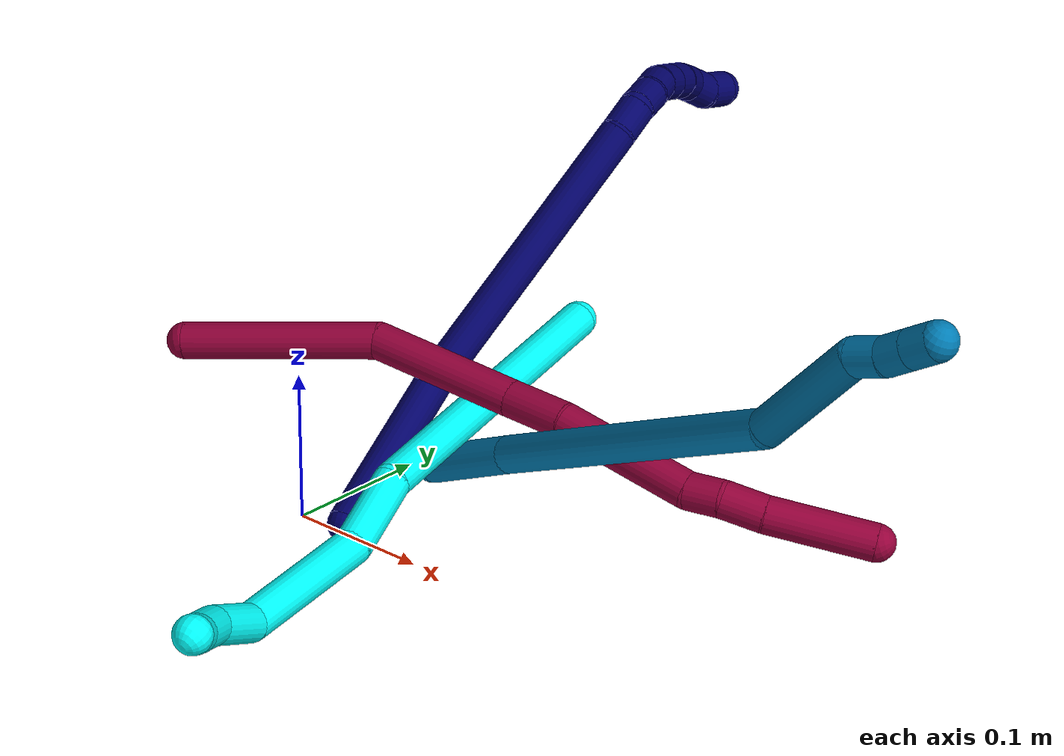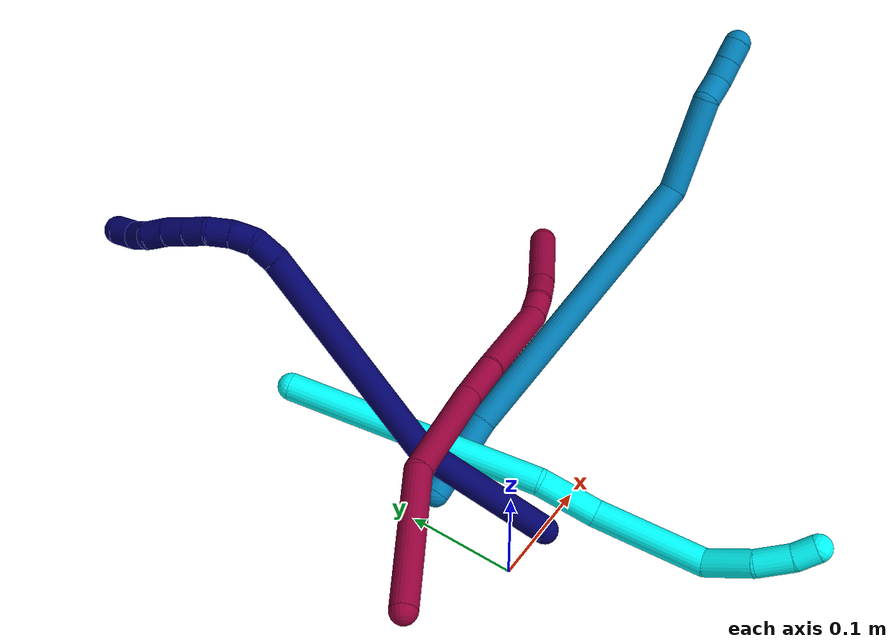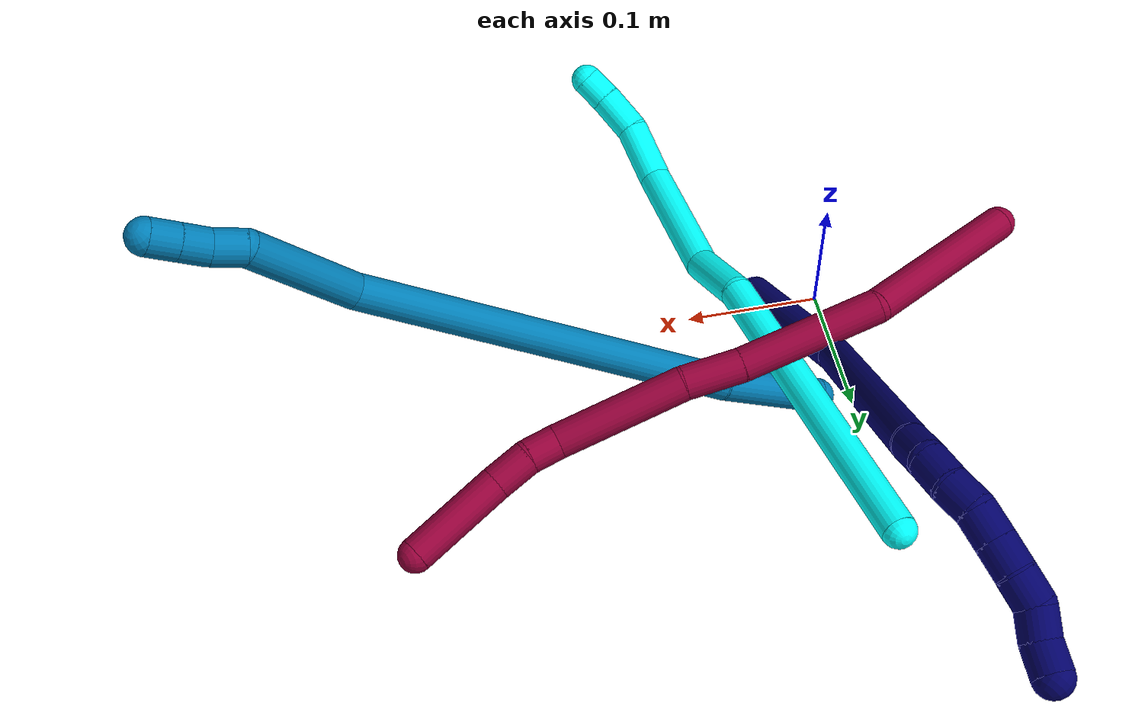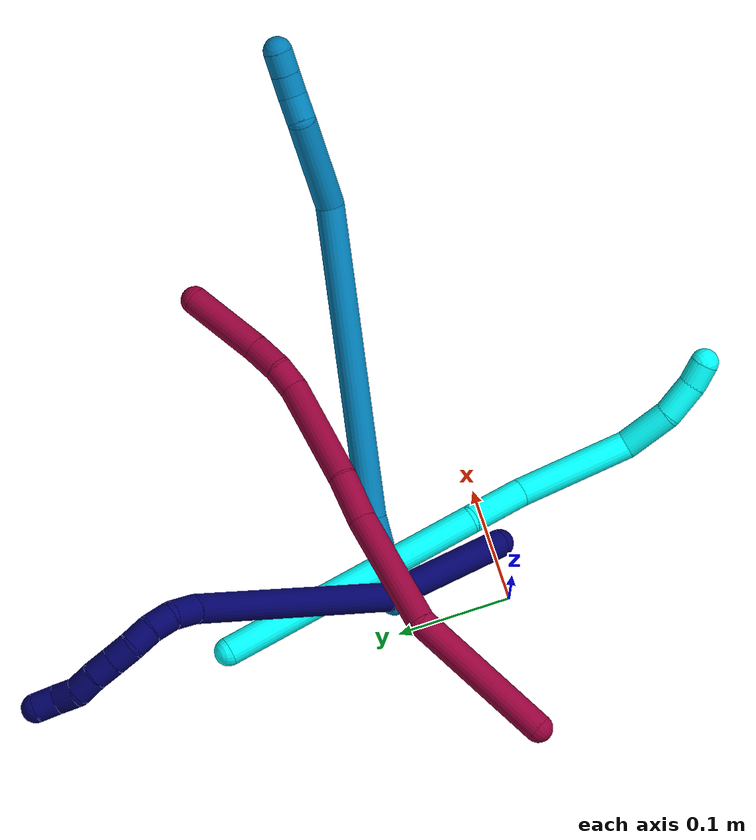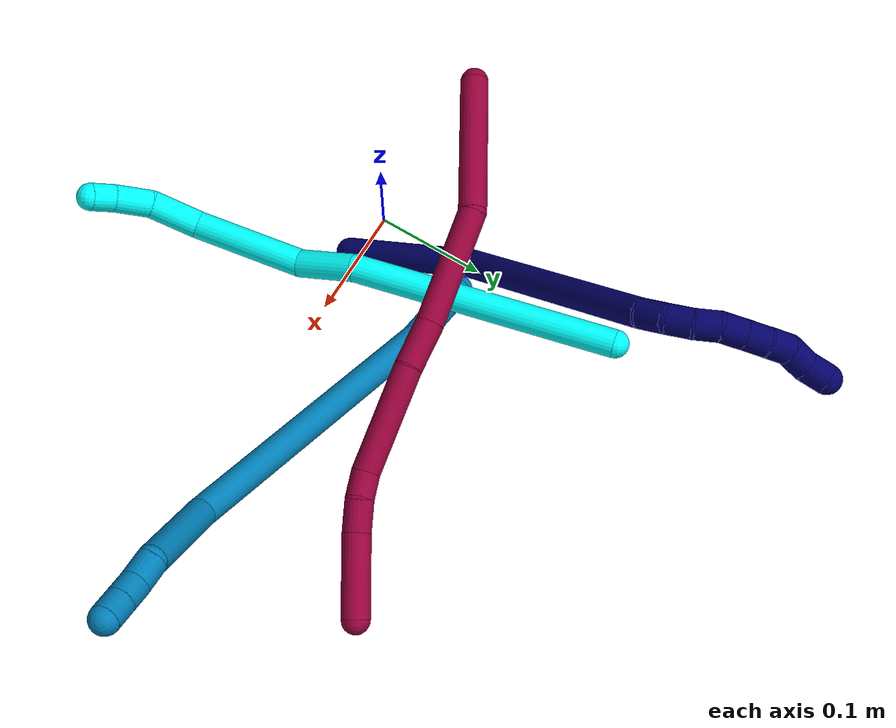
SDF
<sdf version="1.7">
 <world name="default">
  <model name="photoneo_s_sensor">
   <static>1</static>
   <pose>0 0 2 1.57079 1.57079 3.14159</pose>
   <link name="link">
    <inertial><mass>0.1</mass></inertial>
    <sensor name="sensor" type="depth">
     <update_rate>30</update_rate>
     <camera>
      <horizontal_fov>1.22</horizontal_fov>
      <image><width>1920</width><height>1200</height><format>B8G8R8</format></image>
      <clip><near>0.1</near><far>4</far></clip>
      <depth_camera><output>points</output></depth_camera>
     </camera>
     <plugin name="camera_plugin" filename="libgazebo_ros_depth_camera.so">
      <baseline>0.2</baseline>
      <alwaysOn>1</alwaysOn>
      <updateRate>0.0</updateRate>
      <cameraName>camera_ir</cameraName>
      <imageTopicName>/camera/color/image_raw</imageTopicName>
      <cameraInfoTopicName>/camera/color/camera_info</cameraInfoTopicName>
      <depthImageTopicName>/camera/depth/image_raw</depthImageTopicName>
      <depthImageCameraInfoTopicName>/camera/depth/camera_info</depthImageCameraInfoTopicName>
      <pointCloudTopicName>/camera/depth/points</pointCloudTopicName>
      <frameName>fr_optical</frameName>
      <pointCloudCutoff>0.1</pointCloudCutoff>
      <pointCloudCutoffMax>2.0</pointCloudCutoffMax>
      <distortionK1>0</distortionK1>
      <distortionK2>0</distortionK2>
      <distortionK3>0</distortionK3>
      <distortionT1>0</distortionT1>
      <distortionT2>0</distortionT2>
      <CxPrime>0</CxPrime>
      <Cx>0</Cx>
      <Cy>0</Cy>
      <focalLength>0</focalLength>
      <hackBaseline>0</hackBaseline>
     </plugin>
    </sensor>
   </link>
  </model>
  <model name="bin">
   <static>1</static>
   <link name="bottom">
    <collision name="collision-bottom">
     <pose>0 0 -0.01 0 -0 0</pose>
     <geometry><box><size>0.8 0.6 0.02</size></box></geometry>
     <surface>
      <friction><ode><mu>100</mu><mu2>100</mu2></ode></friction>
      <contact><collide_bitmask>65535</collide_bitmask></contact>
     </surface>
    </collision>
   </link>
   <link name="west_wall">
    <collision name="collision-west_wall">
     <pose>-0.41 0 0.1 0 -0 0</pose>
     <geometry><box><size>0.02 0.6 0.2</size></box></geometry>
     <surface>
      <friction><ode><mu>100</mu><mu2>100</mu2></ode></friction>
      <contact><collide_bitmask>65535</collide_bitmask></contact>
     </surface>
    </collision>
   </link>
   <link name="east_wall">
    <collision name="collision-east_wall">
     <pose>0.41 0 0.1 0 -0 0</pose>
     <geometry><box><size>0.02 0.6 0.2</size></box></geometry>
     <surface>
      <friction><ode><mu>100</mu><mu2>100</mu2></ode></friction>
      <contact><collide_bitmask>65535</collide_bitmask></contact>
     </surface>
    </collision>
   </link>
   <link name="south_wall">
    <collision name="collision-south_wall">
     <pose>0 -0.31 0.1 0 -0 0</pose>
     <geometry><box><size>0.8 0.02 0.2</size></box></geometry>
     <surface>
      <friction><ode><mu>100</mu><mu2>100</mu2></ode></friction>
      <contact><collide_bitmask>65535</collide_bitmask></contact>
     </surface>
    </collision>
   </link>
   <link name="north_wall">
    <collision name="collision-north_wall">
     <pose>0 0.31 0.1 0 -0 0</pose>
     <geometry><box><size>0.8 0.02 0.2</size></box></geometry>
     <surface>
      <friction><ode><mu>100</mu><mu2>100</mu2></ode></friction>
      <contact><collide_bitmask>65535</collide_bitmask></contact>
     </surface>
    </collision>
   </link>
  </model>
  <model name="3">
   <static>0</static>
   <link name="3">
    <collision name="collision-cylinder-e_1_1_4">
     <pose>-0.001042 -0.035317 -0.113741 2.84052 -0.008745 -0.057636</pose>
     <geometry><cylinder><radius>0.0125</radius><length>0.238205</length></cylinder></geometry>
     <surface>
      <friction><ode><mu>1.16</mu><mu2>1.16</mu2><slip1>0</slip1><slip2>0</slip2></ode></friction>
      <contact><ode><kp>1e+06</kp><kd>1</kd><max_vel>0</max_vel><min_depth>0.001</min_depth></ode></contact>
     </surface>
    </collision>
    <visual name="visual-cylinder-e_1_1_4">
     <pose>-0.001042 -0.035317 -0.113741 2.84052 -0.008745 -0.057636</pose>
     <geometry><cylinder><radius>0.0125</radius><length>0.238205</length></cylinder></geometry>
     <material><ambient>0.003922 1 0.996078 1</ambient></material>
    </visual>
    <collision name="collision-cylinder-e_2_4_5">
     <pose>0.001298 -0.070559 -0.25541 -3.13887 0.120471 -3.09639</pose>
     <geometry><cylinder><radius>0.0125</radius><length>0.056265</length></cylinder></geometry>
     <surface>
      <friction><ode><mu>1.16</mu><mu2>1.16</mu2><slip1>0</slip1><slip2>0</slip2></ode></friction>
      <contact><ode><kp>1e+06</kp><kd>1</kd><max_vel>0</max_vel><min_depth>0.001</min_depth></ode></contact>
     </surface>
    </collision>
    <visual name="visual-cylinder-e_2_4_5">
     <pose>0.001298 -0.070559 -0.25541 -3.13887 0.120471 -3.09639</pose>
     <geometry><cylinder><radius>0.0125</radius><length>0.056265</length></cylinder></geometry>
     <material><ambient>0.003922 1 0.996078 1</ambient></material>
    </visual>
    <collision name="collision-cylinder-e_3_5_6">
     <pose>0.000401 -0.085162 -0.332897 2.85361 -0.082584 -0.555178</pose>
     <geometry><cylinder><radius>0.0125</radius><length>0.103727</length></cylinder></geometry>
     <surface>
      <friction><ode><mu>1.16</mu><mu2>1.16</mu2><slip1>0</slip1><slip2>0</slip2></ode></friction>
      <contact><ode><kp>1e+06</kp><kd>1</kd><max_vel>0</max_vel><min_depth>0.001</min_depth></ode></contact>
     </surface>
    </collision>
    <visual name="visual-cylinder-e_3_5_6">
     <pose>0.000401 -0.085162 -0.332897 2.85361 -0.082584 -0.555178</pose>
     <geometry><cylinder><radius>0.0125</radius><length>0.103727</length></cylinder></geometry>
     <material><ambient>0.003922 1 0.996078 1</ambient></material>
    </visual>
    <collision name="collision-cylinder-e_4_6_7">
     <pose>-0.005643 -0.116365 -0.398438 2.33957 -0.076636 -0.180348</pose>
     <geometry><cylinder><radius>0.0125</radius><length>0.04611</length></cylinder></geometry>
     <surface>
      <friction><ode><mu>1.16</mu><mu2>1.16</mu2><slip1>0</slip1><slip2>0</slip2></ode></friction>
      <contact><ode><kp>1e+06</kp><kd>1</kd><max_vel>0</max_vel><min_depth>0.001</min_depth></ode></contact>
     </surface>
    </collision>
    <visual name="visual-cylinder-e_4_6_7">
     <pose>-0.005643 -0.116365 -0.398438 2.33957 -0.076636 -0.180348</pose>
     <geometry><cylinder><radius>0.0125</radius><length>0.04611</length></cylinder></geometry>
     <material><ambient>0.003922 1 0.996078 1</ambient></material>
    </visual>
    <collision name="collision-cylinder-e_5_7_8">
     <pose>-0.004231 -0.144817 -0.425816 2.33333 0.190245 0.438994</pose>
     <geometry><cylinder><radius>0.0125</radius><length>0.033602</length></cylinder></geometry>
     <surface>
      <friction><ode><mu>1.16</mu><mu2>1.16</mu2><slip1>0</slip1><slip2>0</slip2></ode></friction>
      <contact><ode><kp>1e+06</kp><kd>1</kd><max_vel>0</max_vel><min_depth>0.001</min_depth></ode></contact>
     </surface>
    </collision>
    <visual name="visual-cylinder-e_5_7_8">
     <pose>-0.004231 -0.144817 -0.425816 2.33333 0.190245 0.438994</pose>
     <geometry><cylinder><radius>0.0125</radius><length>0.033602</length></cylinder></geometry>
     <material><ambient>0.003922 1 0.996078 1</ambient></material>
    </visual>
    <collision name="collision-cylinder-e_6_8_2">
     <pose>0.002168 -0.165605 -0.44297 2.14717 0.296 0.536224</pose>
     <geometry><cylinder><radius>0.0125</radius><length>0.02209</length></cylinder></geometry>
     <surface>
      <friction><ode><mu>1.16</mu><mu2>1.16</mu2><slip1>0</slip1><slip2>0</slip2></ode></friction>
      <contact><ode><kp>1e+06</kp><kd>1</kd><max_vel>0</max_vel><min_depth>0.001</min_depth></ode></contact>
     </surface>
    </collision>
    <visual name="visual-cylinder-e_6_8_2">
     <pose>0.002168 -0.165605 -0.44297 2.14717 0.296 0.536224</pose>
     <geometry><cylinder><radius>0.0125</radius><length>0.02209</length></cylinder></geometry>
     <material><ambient>0.003922 1 0.996078 1</ambient></material>
    </visual>
    <collision name="collision-sphere-2">
     <pose>0.00539 -0.174463 -0.448727 0 -0 0</pose>
     <geometry><sphere><radius>0.0125</radius></sphere></geometry>
     <surface>
      <friction><ode><mu>1.16</mu><mu2>1.16</mu2><slip1>0</slip1><slip2>0</slip2></ode></friction>
      <contact><ode><kp>1e+06</kp><kd>1</kd><max_vel>0</max_vel><min_depth>0.001</min_depth></ode></contact>
     </surface>
    </collision>
    <visual name="visual-sphere-2">
     <pose>0.00539 -0.174463 -0.448727 0 -0 0</pose>
     <geometry><sphere><radius>0.0125</radius></sphere></geometry>
     <material><ambient>0.003922 1 0.996078 1</ambient></material>
    </visual>
    <collision name="collision-sphere-4">
     <pose>-0.002083 -0.070635 -0.227482 0 -0 0</pose>
     <geometry><sphere><radius>0.0125</radius></sphere></geometry>
     <surface>
      <friction><ode><mu>1.16</mu><mu2>1.16</mu2><slip1>0</slip1><slip2>0</slip2></ode></friction>
      <contact><ode><kp>1e+06</kp><kd>1</kd><max_vel>0</max_vel><min_depth>0.001</min_depth></ode></contact>
     </surface>
    </collision>
    <visual name="visual-sphere-4">
     <pose>-0.002083 -0.070635 -0.227482 0 -0 0</pose>
     <geometry><sphere><radius>0.0125</radius></sphere></geometry>
     <material><ambient>0.003922 1 0.996078 1</ambient></material>
    </visual>
    <collision name="collision-sphere-1">
     <geometry><sphere><radius>0.0125</radius></sphere></geometry>
     <surface>
      <friction><ode><mu>1.16</mu><mu2>1.16</mu2><slip1>0</slip1><slip2>0</slip2></ode></friction>
      <contact><ode><kp>1e+06</kp><kd>1</kd><max_vel>0</max_vel><min_depth>0.001</min_depth></ode></contact>
     </surface>
    </collision>
    <visual name="visual-sphere-1">
     <geometry><sphere><radius>0.0125</radius></sphere></geometry>
     <material><ambient>0.003922 1 0.996078 1</ambient></material>
    </visual>
    <collision name="collision-sphere-8">
     <pose>-0.001054 -0.156747 -0.437212 0 -0 0</pose>
     <geometry><sphere><radius>0.0125</radius></sphere></geometry>
     <surface>
      <friction><ode><mu>1.16</mu><mu2>1.16</mu2><slip1>0</slip1><slip2>0</slip2></ode></friction>
      <contact><ode><kp>1e+06</kp><kd>1</kd><max_vel>0</max_vel><min_depth>0.001</min_depth></ode></contact>
     </surface>
    </collision>
    <visual name="visual-sphere-8">
     <pose>-0.001054 -0.156747 -0.437212 0 -0 0</pose>
     <geometry><sphere><radius>0.0125</radius></sphere></geometry>
     <material><ambient>0.003922 1 0.996078 1</ambient></material>
    </visual>
    <collision name="collision-sphere-5">
     <pose>0.004679 -0.070483 -0.283339 0 -0 0</pose>
     <geometry><sphere><radius>0.0125</radius></sphere></geometry>
     <surface>
      <friction><ode><mu>1.16</mu><mu2>1.16</mu2><slip1>0</slip1><slip2>0</slip2></ode></friction>
      <contact><ode><kp>1e+06</kp><kd>1</kd><max_vel>0</max_vel><min_depth>0.001</min_depth></ode></contact>
     </surface>
    </collision>
    <visual name="visual-sphere-5">
     <pose>0.004679 -0.070483 -0.283339 0 -0 0</pose>
     <geometry><sphere><radius>0.0125</radius></sphere></geometry>
     <material><ambient>0.003922 1 0.996078 1</ambient></material>
    </visual>
    <collision name="collision-sphere-6">
     <pose>-0.003878 -0.099842 -0.382456 0 -0 0</pose>
     <geometry><sphere><radius>0.0125</radius></sphere></geometry>
     <surface>
      <friction><ode><mu>1.16</mu><mu2>1.16</mu2><slip1>0</slip1><slip2>0</slip2></ode></friction>
      <contact><ode><kp>1e+06</kp><kd>1</kd><max_vel>0</max_vel><min_depth>0.001</min_depth></ode></contact>
     </surface>
    </collision>
    <visual name="visual-sphere-6">
     <pose>-0.003878 -0.099842 -0.382456 0 -0 0</pose>
     <geometry><sphere><radius>0.0125</radius></sphere></geometry>
     <material><ambient>0.003922 1 0.996078 1</ambient></material>
    </visual>
    <collision name="collision-sphere-7">
     <pose>-0.007408 -0.132888 -0.41442 0 -0 0</pose>
     <geometry><sphere><radius>0.0125</radius></sphere></geometry>
     <surface>
      <friction><ode><mu>1.16</mu><mu2>1.16</mu2><slip1>0</slip1><slip2>0</slip2></ode></friction>
      <contact><ode><kp>1e+06</kp><kd>1</kd><max_vel>0</max_vel><min_depth>0.001</min_depth></ode></contact>
     </surface>
    </collision>
    <visual name="visual-sphere-7">
     <pose>-0.007408 -0.132888 -0.41442 0 -0 0</pose>
     <geometry><sphere><radius>0.0125</radius></sphere></geometry>
     <material><ambient>0.003922 1 0.996078 1</ambient></material>
    </visual>
    <inertial>
     <pose>-0.000976 -0.070213 -0.236921 0 -0 0</pose>
     <mass>0.5</mass>
     <inertia>
      <ixx>0.001098</ixx>
      <ixy>0</ixy>
      <ixz>0</ixz>
      <iyy>-0.001283</iyy>
      <iyz>0</iyz>
      <izz>0.000356</izz>
     </inertia>
    </inertial>
   </link>
   <pose>0.019487 0.246126 0.063926 -1.17681 0.23354 0.236943</pose>
  </model>
  <model name="7">
   <static>0</static>
   <link name="7">
    <collision name="collision-cylinder-e_1_1_4">
     <pose>0.035471 0.05025 0.014633 -1.28743 0.595624 -0.452719</pose>
     <geometry><cylinder><radius>0.0125</radius><length>0.12645</length></cylinder></geometry>
     <surface>
      <friction><ode><mu>1.16</mu><mu2>1.16</mu2><slip1>0</slip1><slip2>0</slip2></ode></friction>
      <contact><ode><kp>1e+06</kp><kd>1</kd><max_vel>0</max_vel><min_depth>0.001</min_depth></ode></contact>
     </surface>
    </collision>
    <visual name="visual-cylinder-e_1_1_4">
     <pose>0.035471 0.05025 0.014633 -1.28743 0.595624 -0.452719</pose>
     <geometry><cylinder><radius>0.0125</radius><length>0.12645</length></cylinder></geometry>
     <material><ambient>0.003922 0 0.403922 1</ambient></material>
    </visual>
    <collision name="collision-cylinder-e_2_4_5">
     <pose>0.097852 0.195041 0.063857 -1.22004 0.261207 -0.183102</pose>
     <geometry><cylinder><radius>0.0125</radius><length>0.208409</length></cylinder></geometry>
     <surface>
      <friction><ode><mu>1.16</mu><mu2>1.16</mu2><slip1>0</slip1><slip2>0</slip2></ode></friction>
      <contact><ode><kp>1e+06</kp><kd>1</kd><max_vel>0</max_vel><min_depth>0.001</min_depth></ode></contact>
     </surface>
    </collision>
    <visual name="visual-cylinder-e_2_4_5">
     <pose>0.097852 0.195041 0.063857 -1.22004 0.261207 -0.183102</pose>
     <geometry><cylinder><radius>0.0125</radius><length>0.208409</length></cylinder></geometry>
     <material><ambient>0.003922 0 0.403922 1</ambient></material>
    </visual>
    <collision name="collision-cylinder-e_3_5_6">
     <pose>0.130036 0.299315 0.102018 -1.21927 0.470513 -0.33172</pose>
     <geometry><cylinder><radius>0.0125</radius><length>0.023265</length></cylinder></geometry>
     <surface>
      <friction><ode><mu>1.16</mu><mu2>1.16</mu2><slip1>0</slip1><slip2>0</slip2></ode></friction>
      <contact><ode><kp>1e+06</kp><kd>1</kd><max_vel>0</max_vel><min_depth>0.001</min_depth></ode></contact>
     </surface>
    </collision>
    <visual name="visual-cylinder-e_3_5_6">
     <pose>0.130036 0.299315 0.102018 -1.21927 0.470513 -0.33172</pose>
     <geometry><cylinder><radius>0.0125</radius><length>0.023265</length></cylinder></geometry>
     <material><ambient>0.003922 0 0.403922 1</ambient></material>
    </visual>
    <collision name="collision-cylinder-e_4_6_7">
     <pose>0.143433 0.314935 0.108871 -1.06201 0.878268 -0.538318</pose>
     <geometry><cylinder><radius>0.0125</radius><length>0.02111</length></cylinder></geometry>
     <surface>
      <friction><ode><mu>1.16</mu><mu2>1.16</mu2><slip1>0</slip1><slip2>0</slip2></ode></friction>
      <contact><ode><kp>1e+06</kp><kd>1</kd><max_vel>0</max_vel><min_depth>0.001</min_depth></ode></contact>
     </surface>
    </collision>
    <visual name="visual-cylinder-e_4_6_7">
     <pose>0.143433 0.314935 0.108871 -1.06201 0.878268 -0.538318</pose>
     <geometry><cylinder><radius>0.0125</radius><length>0.02111</length></cylinder></geometry>
     <material><ambient>0.003922 0 0.403922 1</ambient></material>
    </visual>
    <collision name="collision-cylinder-e_5_7_8">
     <pose>0.160677 0.325042 0.114359 -1.08935 1.08962 -0.703668</pose>
     <geometry><cylinder><radius>0.0125</radius><length>0.020578</length></cylinder></geometry>
     <surface>
      <friction><ode><mu>1.16</mu><mu2>1.16</mu2><slip1>0</slip1><slip2>0</slip2></ode></friction>
      <contact><ode><kp>1e+06</kp><kd>1</kd><max_vel>0</max_vel><min_depth>0.001</min_depth></ode></contact>
     </surface>
    </collision>
    <visual name="visual-cylinder-e_5_7_8">
     <pose>0.160677 0.325042 0.114359 -1.08935 1.08962 -0.703668</pose>
     <geometry><cylinder><radius>0.0125</radius><length>0.020578</length></cylinder></geometry>
     <material><ambient>0.003922 0 0.403922 1</ambient></material>
    </visual>
    <collision name="collision-cylinder-e_6_8_9">
     <pose>0.178902 0.330879 0.120387 -0.400027 1.14307 -0.259296</pose>
     <geometry><cylinder><radius>0.0125</radius><length>0.02001</length></cylinder></geometry>
     <surface>
      <friction><ode><mu>1.16</mu><mu2>1.16</mu2><slip1>0</slip1><slip2>0</slip2></ode></friction>
      <contact><ode><kp>1e+06</kp><kd>1</kd><max_vel>0</max_vel><min_depth>0.001</min_depth></ode></contact>
     </surface>
    </collision>
    <visual name="visual-cylinder-e_6_8_9">
     <pose>0.178902 0.330879 0.120387 -0.400027 1.14307 -0.259296</pose>
     <geometry><cylinder><radius>0.0125</radius><length>0.02001</length></cylinder></geometry>
     <material><ambient>0.003922 0 0.403922 1</ambient></material>
    </visual>
    <collision name="collision-cylinder-e_7_9_10">
     <pose>0.197115 0.33413 0.128156 -0.392853 1.13228 -0.251599</pose>
     <geometry><cylinder><radius>0.0125</radius><length>0.020121</length></cylinder></geometry>
     <surface>
      <friction><ode><mu>1.16</mu><mu2>1.16</mu2><slip1>0</slip1><slip2>0</slip2></ode></friction>
      <contact><ode><kp>1e+06</kp><kd>1</kd><max_vel>0</max_vel><min_depth>0.001</min_depth></ode></contact>
     </surface>
    </collision>
    <visual name="visual-cylinder-e_7_9_10">
     <pose>0.197115 0.33413 0.128156 -0.392853 1.13228 -0.251599</pose>
     <geometry><cylinder><radius>0.0125</radius><length>0.020121</length></cylinder></geometry>
     <material><ambient>0.003922 0 0.403922 1</ambient></material>
    </visual>
    <collision name="collision-cylinder-e_8_10_11">
     <pose>0.21557 0.335872 0.135709 -0.029438 1.20233 -0.020191</pose>
     <geometry><cylinder><radius>0.0125</radius><length>0.020039</length></cylinder></geometry>
     <surface>
      <friction><ode><mu>1.16</mu><mu2>1.16</mu2><slip1>0</slip1><slip2>0</slip2></ode></friction>
      <contact><ode><kp>1e+06</kp><kd>1</kd><max_vel>0</max_vel><min_depth>0.001</min_depth></ode></contact>
     </surface>
    </collision>
    <visual name="visual-cylinder-e_8_10_11">
     <pose>0.21557 0.335872 0.135709 -0.029438 1.20233 -0.020191</pose>
     <geometry><cylinder><radius>0.0125</radius><length>0.020039</length></cylinder></geometry>
     <material><ambient>0.003922 0 0.403922 1</ambient></material>
    </visual>
    <collision name="collision-cylinder-e_9_11_12">
     <pose>0.232064 0.33526 0.14628 0.102713 0.795749 0.0432</pose>
     <geometry><cylinder><radius>0.0125</radius><length>0.020009</length></cylinder></geometry>
     <surface>
      <friction><ode><mu>1.16</mu><mu2>1.16</mu2><slip1>0</slip1><slip2>0</slip2></ode></friction>
      <contact><ode><kp>1e+06</kp><kd>1</kd><max_vel>0</max_vel><min_depth>0.001</min_depth></ode></contact>
     </surface>
    </collision>
    <visual name="visual-cylinder-e_9_11_12">
     <pose>0.232064 0.33526 0.14628 0.102713 0.795749 0.0432</pose>
     <geometry><cylinder><radius>0.0125</radius><length>0.020009</length></cylinder></geometry>
     <material><ambient>0.003922 0 0.403922 1</ambient></material>
    </visual>
    <collision name="collision-cylinder-e_10_12_2">
     <pose>0.246702 0.337097 0.159364 -0.395388 0.846131 -0.179895</pose>
     <geometry><cylinder><radius>0.0125</radius><length>0.020009</length></cylinder></geometry>
     <surface>
      <friction><ode><mu>1.16</mu><mu2>1.16</mu2><slip1>0</slip1><slip2>0</slip2></ode></friction>
      <contact><ode><kp>1e+06</kp><kd>1</kd><max_vel>0</max_vel><min_depth>0.001</min_depth></ode></contact>
     </surface>
    </collision>
    <visual name="visual-cylinder-e_10_12_2">
     <pose>0.246702 0.337097 0.159364 -0.395388 0.846131 -0.179895</pose>
     <geometry><cylinder><radius>0.0125</radius><length>0.020009</length></cylinder></geometry>
     <material><ambient>0.003922 0 0.403922 1</ambient></material>
    </visual>
    <collision name="collision-sphere-2">
     <pose>0.254192 0.339651 0.165484 0 -0 0</pose>
     <geometry><sphere><radius>0.0125</radius></sphere></geometry>
     <surface>
      <friction><ode><mu>1.16</mu><mu2>1.16</mu2><slip1>0</slip1><slip2>0</slip2></ode></friction>
      <contact><ode><kp>1e+06</kp><kd>1</kd><max_vel>0</max_vel><min_depth>0.001</min_depth></ode></contact>
     </surface>
    </collision>
    <visual name="visual-sphere-2">
     <pose>0.254192 0.339651 0.165484 0 -0 0</pose>
     <geometry><sphere><radius>0.0125</radius></sphere></geometry>
     <material><ambient>0.003922 0 0.403922 1</ambient></material>
    </visual>
    <collision name="collision-sphere-12">
     <pose>0.239211 0.334542 0.153244 0 -0 0</pose>
     <geometry><sphere><radius>0.0125</radius></sphere></geometry>
     <surface>
      <friction><ode><mu>1.16</mu><mu2>1.16</mu2><slip1>0</slip1><slip2>0</slip2></ode></friction>
      <contact><ode><kp>1e+06</kp><kd>1</kd><max_vel>0</max_vel><min_depth>0.001</min_depth></ode></contact>
     </surface>
    </collision>
    <visual name="visual-sphere-12">
     <pose>0.239211 0.334542 0.153244 0 -0 0</pose>
     <geometry><sphere><radius>0.0125</radius></sphere></geometry>
     <material><ambient>0.003922 0 0.403922 1</ambient></material>
    </visual>
    <collision name="collision-sphere-11">
     <pose>0.224917 0.335978 0.139316 0 -0 0</pose>
     <geometry><sphere><radius>0.0125</radius></sphere></geometry>
     <surface>
      <friction><ode><mu>1.16</mu><mu2>1.16</mu2><slip1>0</slip1><slip2>0</slip2></ode></friction>
      <contact><ode><kp>1e+06</kp><kd>1</kd><max_vel>0</max_vel><min_depth>0.001</min_depth></ode></contact>
     </surface>
    </collision>
    <visual name="visual-sphere-11">
     <pose>0.224917 0.335978 0.139316 0 -0 0</pose>
     <geometry><sphere><radius>0.0125</radius></sphere></geometry>
     <material><ambient>0.003922 0 0.403922 1</ambient></material>
    </visual>
    <collision name="collision-sphere-10">
     <pose>0.206223 0.335766 0.132102 0 -0 0</pose>
     <geometry><sphere><radius>0.0125</radius></sphere></geometry>
     <surface>
      <friction><ode><mu>1.16</mu><mu2>1.16</mu2><slip1>0</slip1><slip2>0</slip2></ode></friction>
      <contact><ode><kp>1e+06</kp><kd>1</kd><max_vel>0</max_vel><min_depth>0.001</min_depth></ode></contact>
     </surface>
    </collision>
    <visual name="visual-sphere-10">
     <pose>0.206223 0.335766 0.132102 0 -0 0</pose>
     <geometry><sphere><radius>0.0125</radius></sphere></geometry>
     <material><ambient>0.003922 0 0.403922 1</ambient></material>
    </visual>
    <collision name="collision-sphere-9">
     <pose>0.188006 0.332495 0.124209 0 -0 0</pose>
     <geometry><sphere><radius>0.0125</radius></sphere></geometry>
     <surface>
      <friction><ode><mu>1.16</mu><mu2>1.16</mu2><slip1>0</slip1><slip2>0</slip2></ode></friction>
      <contact><ode><kp>1e+06</kp><kd>1</kd><max_vel>0</max_vel><min_depth>0.001</min_depth></ode></contact>
     </surface>
    </collision>
    <visual name="visual-sphere-9">
     <pose>0.188006 0.332495 0.124209 0 -0 0</pose>
     <geometry><sphere><radius>0.0125</radius></sphere></geometry>
     <material><ambient>0.003922 0 0.403922 1</ambient></material>
    </visual>
    <collision name="collision-sphere-4">
     <pose>0.070942 0.100501 0.029267 0 -0 0</pose>
     <geometry><sphere><radius>0.0125</radius></sphere></geometry>
     <surface>
      <friction><ode><mu>1.16</mu><mu2>1.16</mu2><slip1>0</slip1><slip2>0</slip2></ode></friction>
      <contact><ode><kp>1e+06</kp><kd>1</kd><max_vel>0</max_vel><min_depth>0.001</min_depth></ode></contact>
     </surface>
    </collision>
    <visual name="visual-sphere-4">
     <pose>0.070942 0.100501 0.029267 0 -0 0</pose>
     <geometry><sphere><radius>0.0125</radius></sphere></geometry>
     <material><ambient>0.003922 0 0.403922 1</ambient></material>
    </visual>
    <collision name="collision-sphere-1">
     <geometry><sphere><radius>0.0125</radius></sphere></geometry>
     <surface>
      <friction><ode><mu>1.16</mu><mu2>1.16</mu2><slip1>0</slip1><slip2>0</slip2></ode></friction>
      <contact><ode><kp>1e+06</kp><kd>1</kd><max_vel>0</max_vel><min_depth>0.001</min_depth></ode></contact>
     </surface>
    </collision>
    <visual name="visual-sphere-1">
     <geometry><sphere><radius>0.0125</radius></sphere></geometry>
     <material><ambient>0.003922 0 0.403922 1</ambient></material>
    </visual>
    <collision name="collision-sphere-8">
     <pose>0.169798 0.329263 0.116564 0 -0 0</pose>
     <geometry><sphere><radius>0.0125</radius></sphere></geometry>
     <surface>
      <friction><ode><mu>1.16</mu><mu2>1.16</mu2><slip1>0</slip1><slip2>0</slip2></ode></friction>
      <contact><ode><kp>1e+06</kp><kd>1</kd><max_vel>0</max_vel><min_depth>0.001</min_depth></ode></contact>
     </surface>
    </collision>
    <visual name="visual-sphere-8">
     <pose>0.169798 0.329263 0.116564 0 -0 0</pose>
     <geometry><sphere><radius>0.0125</radius></sphere></geometry>
     <material><ambient>0.003922 0 0.403922 1</ambient></material>
    </visual>
    <collision name="collision-sphere-5">
     <pose>0.124763 0.289581 0.098448 0 -0 0</pose>
     <geometry><sphere><radius>0.0125</radius></sphere></geometry>
     <surface>
      <friction><ode><mu>1.16</mu><mu2>1.16</mu2><slip1>0</slip1><slip2>0</slip2></ode></friction>
      <contact><ode><kp>1e+06</kp><kd>1</kd><max_vel>0</max_vel><min_depth>0.001</min_depth></ode></contact>
     </surface>
    </collision>
    <visual name="visual-sphere-5">
     <pose>0.124763 0.289581 0.098448 0 -0 0</pose>
     <geometry><sphere><radius>0.0125</radius></sphere></geometry>
     <material><ambient>0.003922 0 0.403922 1</ambient></material>
    </visual>
    <collision name="collision-sphere-6">
     <pose>0.13531 0.30905 0.105589 0 -0 0</pose>
     <geometry><sphere><radius>0.0125</radius></sphere></geometry>
     <surface>
      <friction><ode><mu>1.16</mu><mu2>1.16</mu2><slip1>0</slip1><slip2>0</slip2></ode></friction>
      <contact><ode><kp>1e+06</kp><kd>1</kd><max_vel>0</max_vel><min_depth>0.001</min_depth></ode></contact>
     </surface>
    </collision>
    <visual name="visual-sphere-6">
     <pose>0.13531 0.30905 0.105589 0 -0 0</pose>
     <geometry><sphere><radius>0.0125</radius></sphere></geometry>
     <material><ambient>0.003922 0 0.403922 1</ambient></material>
    </visual>
    <collision name="collision-sphere-7">
     <pose>0.151557 0.320821 0.112154 0 -0 0</pose>
     <geometry><sphere><radius>0.0125</radius></sphere></geometry>
     <surface>
      <friction><ode><mu>1.16</mu><mu2>1.16</mu2><slip1>0</slip1><slip2>0</slip2></ode></friction>
      <contact><ode><kp>1e+06</kp><kd>1</kd><max_vel>0</max_vel><min_depth>0.001</min_depth></ode></contact>
     </surface>
    </collision>
    <visual name="visual-sphere-7">
     <pose>0.151557 0.320821 0.112154 0 -0 0</pose>
     <geometry><sphere><radius>0.0125</radius></sphere></geometry>
     <material><ambient>0.003922 0 0.403922 1</ambient></material>
    </visual>
    <inertial>
     <pose>0.111367 0.201661 0.072013 0 -0 0</pose>
     <mass>0.5</mass>
     <inertia>
      <ixx>0.000681</ixx>
      <ixy>0</ixy>
      <ixz>0</ixz>
      <iyy>0.000214</iyy>
      <iyz>0</iyz>
      <izz>-0.001124</izz>
     </inertia>
    </inertial>
   </link>
   <pose>0.046607 -0.006207 0.012485 1.88528 0.351799 2.34408</pose>
  </model>
  <model name="8">
   <static>0</static>
   <link name="8">
    <collision name="collision-cylinder-e_1_1_4">
     <pose>0.010254 0.009189 0.065226 -0.139963 0.154432 -0.010847</pose>
     <geometry><cylinder><radius>0.0125</radius><length>0.133327</length></cylinder></geometry>
     <surface>
      <friction><ode><mu>1.16</mu><mu2>1.16</mu2><slip1>0</slip1><slip2>0</slip2></ode></friction>
      <contact><ode><kp>1e+06</kp><kd>1</kd><max_vel>0</max_vel><min_depth>0.001</min_depth></ode></contact>
     </surface>
    </collision>
    <visual name="visual-cylinder-e_1_1_4">
     <pose>0.010254 0.009189 0.065226 -0.139963 0.154432 -0.010847</pose>
     <geometry><cylinder><radius>0.0125</radius><length>0.133327</length></cylinder></geometry>
     <material><ambient>0.584314 0 0.227451 1</ambient></material>
    </visual>
    <collision name="collision-cylinder-e_2_4_5">
     <pose>0.049015 0.021866 0.174264 -0.079442 0.575407 -0.023519</pose>
     <geometry><cylinder><radius>0.0125</radius><length>0.104772</length></cylinder></geometry>
     <surface>
      <friction><ode><mu>1.16</mu><mu2>1.16</mu2><slip1>0</slip1><slip2>0</slip2></ode></friction>
      <contact><ode><kp>1e+06</kp><kd>1</kd><max_vel>0</max_vel><min_depth>0.001</min_depth></ode></contact>
     </surface>
    </collision>
    <visual name="visual-cylinder-e_2_4_5">
     <pose>0.049015 0.021866 0.174264 -0.079442 0.575407 -0.023519</pose>
     <geometry><cylinder><radius>0.0125</radius><length>0.104772</length></cylinder></geometry>
     <material><ambient>0.584314 0 0.227451 1</ambient></material>
    </visual>
    <collision name="collision-cylinder-e_3_5_6">
     <pose>0.089213 0.024576 0.235717 0.0441 0.584762 0.013276</pose>
     <geometry><cylinder><radius>0.0125</radius><length>0.042356</length></cylinder></geometry>
     <surface>
      <friction><ode><mu>1.16</mu><mu2>1.16</mu2><slip1>0</slip1><slip2>0</slip2></ode></friction>
      <contact><ode><kp>1e+06</kp><kd>1</kd><max_vel>0</max_vel><min_depth>0.001</min_depth></ode></contact>
     </surface>
    </collision>
    <visual name="visual-cylinder-e_3_5_6">
     <pose>0.089213 0.024576 0.235717 0.0441 0.584762 0.013276</pose>
     <geometry><cylinder><radius>0.0125</radius><length>0.042356</length></cylinder></geometry>
     <material><ambient>0.584314 0 0.227451 1</ambient></material>
    </visual>
    <collision name="collision-cylinder-e_4_6_7">
     <pose>0.130402 0.02899 0.29087 -0.137567 0.661784 -0.047323</pose>
     <geometry><cylinder><radius>0.0125</radius><length>0.096005</length></cylinder></geometry>
     <surface>
      <friction><ode><mu>1.16</mu><mu2>1.16</mu2><slip1>0</slip1><slip2>0</slip2></ode></friction>
      <contact><ode><kp>1e+06</kp><kd>1</kd><max_vel>0</max_vel><min_depth>0.001</min_depth></ode></contact>
     </surface>
    </collision>
    <visual name="visual-cylinder-e_4_6_7">
     <pose>0.130402 0.02899 0.29087 -0.137567 0.661784 -0.047323</pose>
     <geometry><cylinder><radius>0.0125</radius><length>0.096005</length></cylinder></geometry>
     <material><ambient>0.584314 0 0.227451 1</ambient></material>
    </visual>
    <collision name="collision-cylinder-e_5_7_8">
     <pose>0.164331 0.035378 0.33903 -0.111719 0.392058 -0.022207</pose>
     <geometry><cylinder><radius>0.0125</radius><length>0.023188</length></cylinder></geometry>
     <surface>
      <friction><ode><mu>1.16</mu><mu2>1.16</mu2><slip1>0</slip1><slip2>0</slip2></ode></friction>
      <contact><ode><kp>1e+06</kp><kd>1</kd><max_vel>0</max_vel><min_depth>0.001</min_depth></ode></contact>
     </surface>
    </collision>
    <visual name="visual-cylinder-e_5_7_8">
     <pose>0.164331 0.035378 0.33903 -0.111719 0.392058 -0.022207</pose>
     <geometry><cylinder><radius>0.0125</radius><length>0.023188</length></cylinder></geometry>
     <material><ambient>0.584314 0 0.227451 1</ambient></material>
    </visual>
    <collision name="collision-cylinder-e_6_8_9">
     <pose>0.17469 0.041135 0.361786 -0.360358 0.429636 -0.079445</pose>
     <geometry><cylinder><radius>0.0125</radius><length>0.028468</length></cylinder></geometry>
     <surface>
      <friction><ode><mu>1.16</mu><mu2>1.16</mu2><slip1>0</slip1><slip2>0</slip2></ode></friction>
      <contact><ode><kp>1e+06</kp><kd>1</kd><max_vel>0</max_vel><min_depth>0.001</min_depth></ode></contact>
     </surface>
    </collision>
    <visual name="visual-cylinder-e_6_8_9">
     <pose>0.17469 0.041135 0.361786 -0.360358 0.429636 -0.079445</pose>
     <geometry><cylinder><radius>0.0125</radius><length>0.028468</length></cylinder></geometry>
     <material><ambient>0.584314 0 0.227451 1</ambient></material>
    </visual>
    <collision name="collision-cylinder-e_7_9_2">
     <pose>0.192133 0.057807 0.405717 -0.363604 0.326096 -0.060465</pose>
     <geometry><cylinder><radius>0.0125</radius><length>0.071884</length></cylinder></geometry>
     <surface>
      <friction><ode><mu>1.16</mu><mu2>1.16</mu2><slip1>0</slip1><slip2>0</slip2></ode></friction>
      <contact><ode><kp>1e+06</kp><kd>1</kd><max_vel>0</max_vel><min_depth>0.001</min_depth></ode></contact>
     </surface>
    </collision>
    <visual name="visual-cylinder-e_7_9_2">
     <pose>0.192133 0.057807 0.405717 -0.363604 0.326096 -0.060465</pose>
     <geometry><cylinder><radius>0.0125</radius><length>0.071884</length></cylinder></geometry>
     <material><ambient>0.584314 0 0.227451 1</ambient></material>
    </visual>
    <collision name="collision-sphere-2">
     <pose>0.203647 0.069916 0.437539 0 -0 0</pose>
     <geometry><sphere><radius>0.0125</radius></sphere></geometry>
     <surface>
      <friction><ode><mu>1.16</mu><mu2>1.16</mu2><slip1>0</slip1><slip2>0</slip2></ode></friction>
      <contact><ode><kp>1e+06</kp><kd>1</kd><max_vel>0</max_vel><min_depth>0.001</min_depth></ode></contact>
     </surface>
    </collision>
    <visual name="visual-sphere-2">
     <pose>0.203647 0.069916 0.437539 0 -0 0</pose>
     <geometry><sphere><radius>0.0125</radius></sphere></geometry>
     <material><ambient>0.584314 0 0.227451 1</ambient></material>
    </visual>
    <collision name="collision-sphere-9">
     <pose>0.180619 0.045698 0.373895 0 -0 0</pose>
     <geometry><sphere><radius>0.0125</radius></sphere></geometry>
     <surface>
      <friction><ode><mu>1.16</mu><mu2>1.16</mu2><slip1>0</slip1><slip2>0</slip2></ode></friction>
      <contact><ode><kp>1e+06</kp><kd>1</kd><max_vel>0</max_vel><min_depth>0.001</min_depth></ode></contact>
     </surface>
    </collision>
    <visual name="visual-sphere-9">
     <pose>0.180619 0.045698 0.373895 0 -0 0</pose>
     <geometry><sphere><radius>0.0125</radius></sphere></geometry>
     <material><ambient>0.584314 0 0.227451 1</ambient></material>
    </visual>
    <collision name="collision-sphere-4">
     <pose>0.020508 0.018379 0.130452 0 -0 0</pose>
     <geometry><sphere><radius>0.0125</radius></sphere></geometry>
     <surface>
      <friction><ode><mu>1.16</mu><mu2>1.16</mu2><slip1>0</slip1><slip2>0</slip2></ode></friction>
      <contact><ode><kp>1e+06</kp><kd>1</kd><max_vel>0</max_vel><min_depth>0.001</min_depth></ode></contact>
     </surface>
    </collision>
    <visual name="visual-sphere-4">
     <pose>0.020508 0.018379 0.130452 0 -0 0</pose>
     <geometry><sphere><radius>0.0125</radius></sphere></geometry>
     <material><ambient>0.584314 0 0.227451 1</ambient></material>
    </visual>
    <collision name="collision-sphere-1">
     <geometry><sphere><radius>0.0125</radius></sphere></geometry>
     <surface>
      <friction><ode><mu>1.16</mu><mu2>1.16</mu2><slip1>0</slip1><slip2>0</slip2></ode></friction>
      <contact><ode><kp>1e+06</kp><kd>1</kd><max_vel>0</max_vel><min_depth>0.001</min_depth></ode></contact>
     </surface>
    </collision>
    <visual name="visual-sphere-1">
     <geometry><sphere><radius>0.0125</radius></sphere></geometry>
     <material><ambient>0.584314 0 0.227451 1</ambient></material>
    </visual>
    <collision name="collision-sphere-8">
     <pose>0.168761 0.036573 0.349677 0 -0 0</pose>
     <geometry><sphere><radius>0.0125</radius></sphere></geometry>
     <surface>
      <friction><ode><mu>1.16</mu><mu2>1.16</mu2><slip1>0</slip1><slip2>0</slip2></ode></friction>
      <contact><ode><kp>1e+06</kp><kd>1</kd><max_vel>0</max_vel><min_depth>0.001</min_depth></ode></contact>
     </surface>
    </collision>
    <visual name="visual-sphere-8">
     <pose>0.168761 0.036573 0.349677 0 -0 0</pose>
     <geometry><sphere><radius>0.0125</radius></sphere></geometry>
     <material><ambient>0.584314 0 0.227451 1</ambient></material>
    </visual>
    <collision name="collision-sphere-5">
     <pose>0.077522 0.025354 0.218075 0 -0 0</pose>
     <geometry><sphere><radius>0.0125</radius></sphere></geometry>
     <surface>
      <friction><ode><mu>1.16</mu><mu2>1.16</mu2><slip1>0</slip1><slip2>0</slip2></ode></friction>
      <contact><ode><kp>1e+06</kp><kd>1</kd><max_vel>0</max_vel><min_depth>0.001</min_depth></ode></contact>
     </surface>
    </collision>
    <visual name="visual-sphere-5">
     <pose>0.077522 0.025354 0.218075 0 -0 0</pose>
     <geometry><sphere><radius>0.0125</radius></sphere></geometry>
     <material><ambient>0.584314 0 0.227451 1</ambient></material>
    </visual>
    <collision name="collision-sphere-6">
     <pose>0.100903 0.023797 0.253359 0 -0 0</pose>
     <geometry><sphere><radius>0.0125</radius></sphere></geometry>
     <surface>
      <friction><ode><mu>1.16</mu><mu2>1.16</mu2><slip1>0</slip1><slip2>0</slip2></ode></friction>
      <contact><ode><kp>1e+06</kp><kd>1</kd><max_vel>0</max_vel><min_depth>0.001</min_depth></ode></contact>
     </surface>
    </collision>
    <visual name="visual-sphere-6">
     <pose>0.100903 0.023797 0.253359 0 -0 0</pose>
     <geometry><sphere><radius>0.0125</radius></sphere></geometry>
     <material><ambient>0.584314 0 0.227451 1</ambient></material>
    </visual>
    <collision name="collision-sphere-7">
     <pose>0.159901 0.034183 0.328382 0 -0 0</pose>
     <geometry><sphere><radius>0.0125</radius></sphere></geometry>
     <surface>
      <friction><ode><mu>1.16</mu><mu2>1.16</mu2><slip1>0</slip1><slip2>0</slip2></ode></friction>
      <contact><ode><kp>1e+06</kp><kd>1</kd><max_vel>0</max_vel><min_depth>0.001</min_depth></ode></contact>
     </surface>
    </collision>
    <visual name="visual-sphere-7">
     <pose>0.159901 0.034183 0.328382 0 -0 0</pose>
     <geometry><sphere><radius>0.0125</radius></sphere></geometry>
     <material><ambient>0.584314 0 0.227451 1</ambient></material>
    </visual>
    <inertial>
     <pose>0.090791 0.026974 0.224377 0 -0 0</pose>
     <mass>0.5</mass>
     <inertia>
      <ixx>0.000395</ixx>
      <ixy>0</ixy>
      <ixz>0</ixz>
      <iyy>0.000418</iyy>
      <iyz>0</iyz>
      <izz>-0.000171</izz>
     </inertia>
    </inertial>
   </link>
   <pose>-0.127001 0.018669 0.079654 -1.15939 0.724619 -0.750229</pose>
  </model>
  <model name="9">
   <static>0</static>
   <link name="9">
    <collision name="collision-cylinder-e_1_1_4">
     <pose>0.003507 -0.027099 0.027048 0.786343 0.091345 0.037909</pose>
     <geometry><cylinder><radius>0.0125</radius><length>0.076895</length></cylinder></geometry>
     <surface>
      <friction><ode><mu>1.16</mu><mu2>1.16</mu2><slip1>0</slip1><slip2>0</slip2></ode></friction>
      <contact><ode><kp>1e+06</kp><kd>1</kd><max_vel>0</max_vel><min_depth>0.001</min_depth></ode></contact>
     </surface>
    </collision>
    <visual name="visual-cylinder-e_1_1_4">
     <pose>0.003507 -0.027099 0.027048 0.786343 0.091345 0.037909</pose>
     <geometry><cylinder><radius>0.0125</radius><length>0.076895</length></cylinder></geometry>
     <material><ambient>0 0.490196 0.709804 1</ambient></material>
    </visual>
    <collision name="collision-cylinder-e_2_4_5">
     <pose>0.002557 -0.152517 0.148976 0.803193 -0.03261 -0.01385</pose>
     <geometry><cylinder><radius>0.0125</radius><length>0.273414</length></cylinder></geometry>
     <surface>
      <friction><ode><mu>1.16</mu><mu2>1.16</mu2><slip1>0</slip1><slip2>0</slip2></ode></friction>
      <contact><ode><kp>1e+06</kp><kd>1</kd><max_vel>0</max_vel><min_depth>0.001</min_depth></ode></contact>
     </surface>
    </collision>
    <visual name="visual-cylinder-e_2_4_5">
     <pose>0.002557 -0.152517 0.148976 0.803193 -0.03261 -0.01385</pose>
     <geometry><cylinder><radius>0.0125</radius><length>0.273414</length></cylinder></geometry>
     <material><ambient>0 0.490196 0.709804 1</ambient></material>
    </visual>
    <collision name="collision-cylinder-e_3_5_6">
     <pose>0.001064 -0.266853 0.284035 0.379358 0.068436 0.013144</pose>
     <geometry><cylinder><radius>0.0125</radius><length>0.08671</length></cylinder></geometry>
     <surface>
      <friction><ode><mu>1.16</mu><mu2>1.16</mu2><slip1>0</slip1><slip2>0</slip2></ode></friction>
      <contact><ode><kp>1e+06</kp><kd>1</kd><max_vel>0</max_vel><min_depth>0.001</min_depth></ode></contact>
     </surface>
    </collision>
    <visual name="visual-cylinder-e_3_5_6">
     <pose>0.001064 -0.266853 0.284035 0.379358 0.068436 0.013144</pose>
     <geometry><cylinder><radius>0.0125</radius><length>0.08671</length></cylinder></geometry>
     <material><ambient>0 0.490196 0.709804 1</ambient></material>
    </visual>
    <collision name="collision-cylinder-e_4_6_7">
     <pose>0.006178 -0.291525 0.331321 0.88316 0.189576 0.089824</pose>
     <geometry><cylinder><radius>0.0125</radius><length>0.022806</length></cylinder></geometry>
     <surface>
      <friction><ode><mu>1.16</mu><mu2>1.16</mu2><slip1>0</slip1><slip2>0</slip2></ode></friction>
      <contact><ode><kp>1e+06</kp><kd>1</kd><max_vel>0</max_vel><min_depth>0.001</min_depth></ode></contact>
     </surface>
    </collision>
    <visual name="visual-cylinder-e_4_6_7">
     <pose>0.006178 -0.291525 0.331321 0.88316 0.189576 0.089824</pose>
     <geometry><cylinder><radius>0.0125</radius><length>0.022806</length></cylinder></geometry>
     <material><ambient>0 0.490196 0.709804 1</ambient></material>
    </visual>
    <collision name="collision-cylinder-e_5_7_8">
     <pose>0.009656 -0.30634 0.346197 0.670561 0.133297 0.046506</pose>
     <geometry><cylinder><radius>0.0125</radius><length>0.020006</length></cylinder></geometry>
     <surface>
      <friction><ode><mu>1.16</mu><mu2>1.16</mu2><slip1>0</slip1><slip2>0</slip2></ode></friction>
      <contact><ode><kp>1e+06</kp><kd>1</kd><max_vel>0</max_vel><min_depth>0.001</min_depth></ode></contact>
     </surface>
    </collision>
    <visual name="visual-cylinder-e_5_7_8">
     <pose>0.009656 -0.30634 0.346197 0.670561 0.133297 0.046506</pose>
     <geometry><cylinder><radius>0.0125</radius><length>0.020006</length></cylinder></geometry>
     <material><ambient>0 0.490196 0.709804 1</ambient></material>
    </visual>
    <collision name="collision-cylinder-e_6_8_2">
     <pose>0.0123 -0.31874 0.361777 0.673929 0.130733 0.045856</pose>
     <geometry><cylinder><radius>0.0125</radius><length>0.020168</length></cylinder></geometry>
     <surface>
      <friction><ode><mu>1.16</mu><mu2>1.16</mu2><slip1>0</slip1><slip2>0</slip2></ode></friction>
      <contact><ode><kp>1e+06</kp><kd>1</kd><max_vel>0</max_vel><min_depth>0.001</min_depth></ode></contact>
     </surface>
    </collision>
    <visual name="visual-cylinder-e_6_8_2">
     <pose>0.0123 -0.31874 0.361777 0.673929 0.130733 0.045856</pose>
     <geometry><cylinder><radius>0.0125</radius><length>0.020168</length></cylinder></geometry>
     <material><ambient>0 0.490196 0.709804 1</ambient></material>
    </visual>
    <collision name="collision-sphere-2">
     <pose>0.013615 -0.32498 0.369589 0 -0 0</pose>
     <geometry><sphere><radius>0.0125</radius></sphere></geometry>
     <surface>
      <friction><ode><mu>1.16</mu><mu2>1.16</mu2><slip1>0</slip1><slip2>0</slip2></ode></friction>
      <contact><ode><kp>1e+06</kp><kd>1</kd><max_vel>0</max_vel><min_depth>0.001</min_depth></ode></contact>
     </surface>
    </collision>
    <visual name="visual-sphere-2">
     <pose>0.013615 -0.32498 0.369589 0 -0 0</pose>
     <geometry><sphere><radius>0.0125</radius></sphere></geometry>
     <material><ambient>0 0.490196 0.709804 1</ambient></material>
    </visual>
    <collision name="collision-sphere-4">
     <pose>0.007014 -0.054198 0.054095 0 -0 0</pose>
     <geometry><sphere><radius>0.0125</radius></sphere></geometry>
     <surface>
      <friction><ode><mu>1.16</mu><mu2>1.16</mu2><slip1>0</slip1><slip2>0</slip2></ode></friction>
      <contact><ode><kp>1e+06</kp><kd>1</kd><max_vel>0</max_vel><min_depth>0.001</min_depth></ode></contact>
     </surface>
    </collision>
    <visual name="visual-sphere-4">
     <pose>0.007014 -0.054198 0.054095 0 -0 0</pose>
     <geometry><sphere><radius>0.0125</radius></sphere></geometry>
     <material><ambient>0 0.490196 0.709804 1</ambient></material>
    </visual>
    <collision name="collision-sphere-1">
     <geometry><sphere><radius>0.0125</radius></sphere></geometry>
     <surface>
      <friction><ode><mu>1.16</mu><mu2>1.16</mu2><slip1>0</slip1><slip2>0</slip2></ode></friction>
      <contact><ode><kp>1e+06</kp><kd>1</kd><max_vel>0</max_vel><min_depth>0.001</min_depth></ode></contact>
     </surface>
    </collision>
    <visual name="visual-sphere-1">
     <geometry><sphere><radius>0.0125</radius></sphere></geometry>
     <material><ambient>0 0.490196 0.709804 1</ambient></material>
    </visual>
    <collision name="collision-sphere-8">
     <pose>0.010986 -0.312501 0.353964 0 -0 0</pose>
     <geometry><sphere><radius>0.0125</radius></sphere></geometry>
     <surface>
      <friction><ode><mu>1.16</mu><mu2>1.16</mu2><slip1>0</slip1><slip2>0</slip2></ode></friction>
      <contact><ode><kp>1e+06</kp><kd>1</kd><max_vel>0</max_vel><min_depth>0.001</min_depth></ode></contact>
     </surface>
    </collision>
    <visual name="visual-sphere-8">
     <pose>0.010986 -0.312501 0.353964 0 -0 0</pose>
     <geometry><sphere><radius>0.0125</radius></sphere></geometry>
     <material><ambient>0 0.490196 0.709804 1</ambient></material>
    </visual>
    <collision name="collision-sphere-5">
     <pose>-0.0019 -0.250836 0.243857 0 -0 0</pose>
     <geometry><sphere><radius>0.0125</radius></sphere></geometry>
     <surface>
      <friction><ode><mu>1.16</mu><mu2>1.16</mu2><slip1>0</slip1><slip2>0</slip2></ode></friction>
      <contact><ode><kp>1e+06</kp><kd>1</kd><max_vel>0</max_vel><min_depth>0.001</min_depth></ode></contact>
     </surface>
    </collision>
    <visual name="visual-sphere-5">
     <pose>-0.0019 -0.250836 0.243857 0 -0 0</pose>
     <geometry><sphere><radius>0.0125</radius></sphere></geometry>
     <material><ambient>0 0.490196 0.709804 1</ambient></material>
    </visual>
    <collision name="collision-sphere-6">
     <pose>0.004029 -0.282871 0.324213 0 -0 0</pose>
     <geometry><sphere><radius>0.0125</radius></sphere></geometry>
     <surface>
      <friction><ode><mu>1.16</mu><mu2>1.16</mu2><slip1>0</slip1><slip2>0</slip2></ode></friction>
      <contact><ode><kp>1e+06</kp><kd>1</kd><max_vel>0</max_vel><min_depth>0.001</min_depth></ode></contact>
     </surface>
    </collision>
    <visual name="visual-sphere-6">
     <pose>0.004029 -0.282871 0.324213 0 -0 0</pose>
     <geometry><sphere><radius>0.0125</radius></sphere></geometry>
     <material><ambient>0 0.490196 0.709804 1</ambient></material>
    </visual>
    <collision name="collision-sphere-7">
     <pose>0.008327 -0.300179 0.338429 0 -0 0</pose>
     <geometry><sphere><radius>0.0125</radius></sphere></geometry>
     <surface>
      <friction><ode><mu>1.16</mu><mu2>1.16</mu2><slip1>0</slip1><slip2>0</slip2></ode></friction>
      <contact><ode><kp>1e+06</kp><kd>1</kd><max_vel>0</max_vel><min_depth>0.001</min_depth></ode></contact>
     </surface>
    </collision>
    <visual name="visual-sphere-7">
     <pose>0.008327 -0.300179 0.338429 0 -0 0</pose>
     <geometry><sphere><radius>0.0125</radius></sphere></geometry>
     <material><ambient>0 0.490196 0.709804 1</ambient></material>
    </visual>
    <inertial>
     <pose>0.003287 -0.172257 0.178439 0 -0 0</pose>
     <mass>0.5</mass>
     <inertia>
      <ixx>0.001796</ixx>
      <ixy>0</ixy>
      <ixz>0</ixz>
      <iyy>0.00123</iyy>
      <iyz>0</iyz>
      <izz>0.001362</izz>
     </inertia>
    </inertial>
   </link>
   <pose>0.026952 0.095488 0.011432 0.336537 0.188388 1.34714</pose>
  </model>
 </world>
</sdf>
